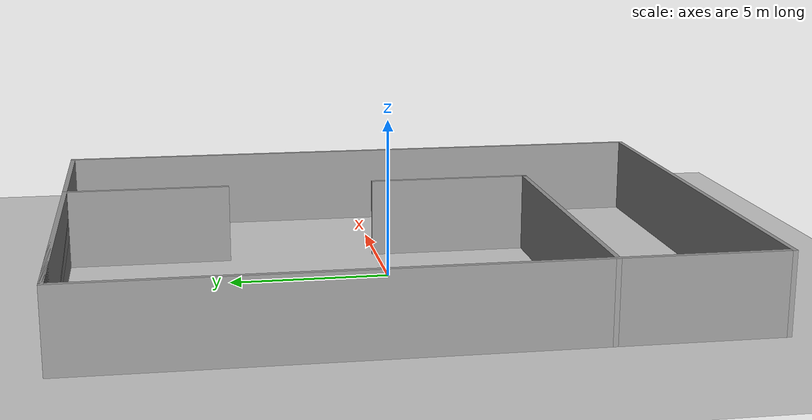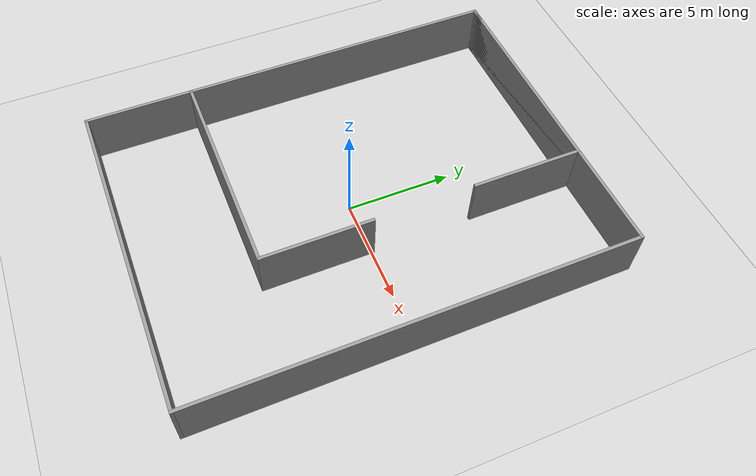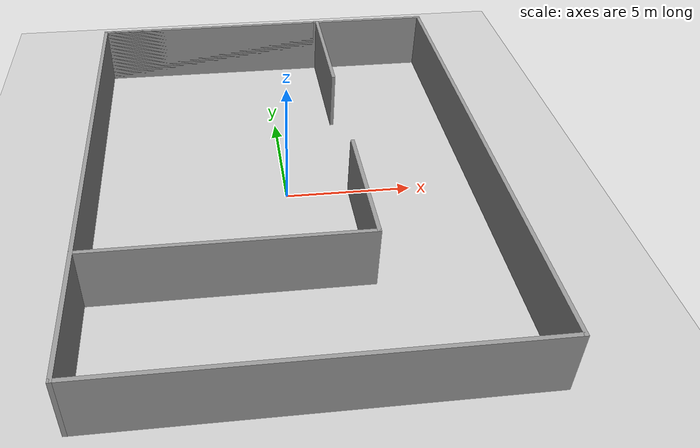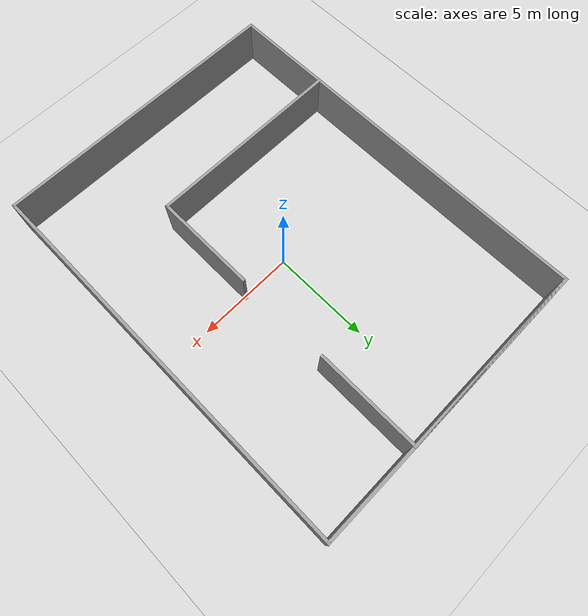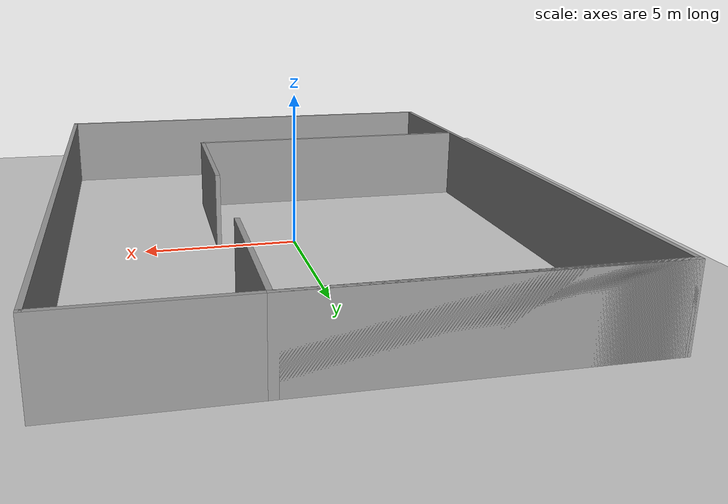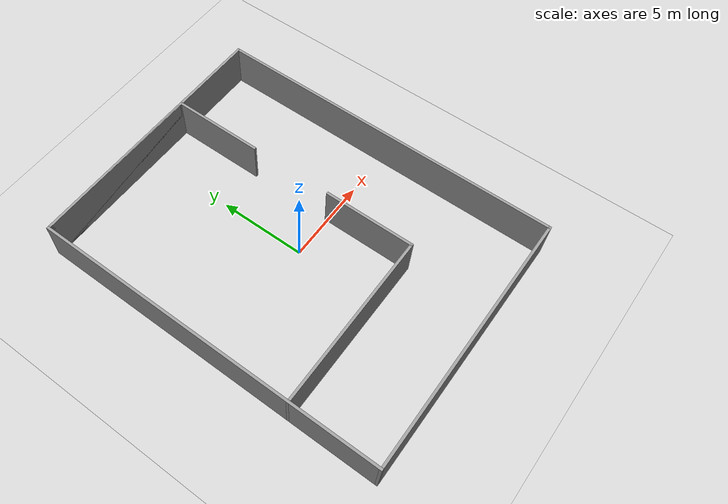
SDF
<sdf version="1.6">
 <world name="default">
  <light name="sun" type="directional">
   <pose>0 0 10 0 -0 0</pose>
   <diffuse>0.8 0.8 0.8 1</diffuse>
   <specular>0.2 0.2 0.2 1</specular>
   <attenuation>
    <range>1000</range>
    <constant>0.9</constant>
    <linear>0.01</linear>
    <quadratic>0.001</quadratic>
   </attenuation>
   <direction>-0.5 0.1 -0.9</direction>
  </light>
  <model name="ground_plane">
   <static>1</static>
   <link name="link">
    <collision name="collision">
     <geometry><plane><normal>0 0 1</normal><size>100 100</size></plane></geometry>
     <surface>
      <contact><collide_bitmask>65535</collide_bitmask></contact>
      <friction><ode><mu>100</mu><mu2>50</mu2></ode></friction>
     </surface>
    </collision>
    <visual name="visual">
     <cast_shadows>0</cast_shadows>
     <geometry><plane><normal>0 0 1</normal><size>100 100</size></plane></geometry>
     <material>
      <script><uri>file://media/materials/scripts/gazebo.material</uri><name>Gazebo/Grey</name></script>
     </material>
    </visual>
   </link>
  </model>
  <gravity>0 0 -9.8</gravity>
  <magnetic_field>6e-06 2.3e-05 -4.2e-05</magnetic_field>
  <atmosphere type="adiabatic"/>
  <physics name="default_physics" default="0" type="ode">
   <max_step_size>0.001</max_step_size>
   <real_time_factor>1</real_time_factor>
   <real_time_update_rate>1000</real_time_update_rate>
  </physics>
  <scene><ambient>0.4 0.4 0.4 1</ambient><background>0.7 0.7 0.7 1</background><shadows>1</shadows></scene>
  <audio><device>default</device></audio>
  <spherical_coordinates>
   <surface_model>EARTH_WGS84</surface_model>
   <latitude_deg>0</latitude_deg>
   <longitude_deg>0</longitude_deg>
   <elevation>0</elevation>
   <heading_deg>0</heading_deg>
  </spherical_coordinates>
  <model name="bigroom">
   <pose>0.012016 0.009737 0 0 -0 0</pose>
   <link name="Wall_44">
    <collision name="Wall_44_Collision">
     <geometry><box><size>15.25 0.15 2.5</size></box></geometry>
     <pose>0 0 1.25 0 -0 0</pose>
    </collision>
    <visual name="Wall_44_Visual">
     <pose>0 0 1.25 0 -0 0</pose>
     <geometry><box><size>15.25 0.15 2.5</size></box></geometry>
     <material>
      <script><uri>file://media/materials/scripts/gazebo.material</uri><name>Gazebo/Grey</name></script>
      <ambient>1 1 1 1</ambient>
     </material>
     <meta><layer>0</layer></meta>
    </visual>
    <pose>-0 10.05 0 0 -0 0</pose>
   </link>
   <link name="Wall_46">
    <collision name="Wall_46_Collision">
     <geometry><box><size>20.25 0.15 2.5</size></box></geometry>
     <pose>0 0 1.25 0 -0 0</pose>
    </collision>
    <visual name="Wall_46_Visual">
     <pose>0 0 1.25 0 -0 0</pose>
     <geometry><box><size>20.25 0.15 2.5</size></box></geometry>
     <material>
      <script><uri>file://media/materials/scripts/gazebo.material</uri><name>Gazebo/Grey</name></script>
      <ambient>1 1 1 1</ambient>
     </material>
     <meta><layer>0</layer></meta>
    </visual>
    <pose>7.55 0 0 0 -0 -1.5708</pose>
   </link>
   <link name="Wall_47">
    <collision name="Wall_47_Collision">
     <geometry><box><size>15.25 0.15 2.5</size></box></geometry>
     <pose>0 0 1.25 0 -0 0</pose>
    </collision>
    <visual name="Wall_47_Visual">
     <pose>0 0 1.25 0 -0 0</pose>
     <geometry><box><size>15.25 0.15 2.5</size></box></geometry>
     <material>
      <script><uri>file://media/materials/scripts/gazebo.material</uri><name>Gazebo/Grey</name></script>
      <ambient>1 1 1 1</ambient>
     </material>
     <meta><layer>0</layer></meta>
    </visual>
    <pose>-0 -10.05 0 0 -0 3.14159</pose>
   </link>
   <link name="Wall_48">
    <collision name="Wall_48_Collision">
     <geometry><box><size>20.25 0.15 2.5</size></box></geometry>
     <pose>0 0 1.25 0 -0 0</pose>
    </collision>
    <visual name="Wall_48_Visual">
     <pose>0 0 1.25 0 -0 0</pose>
     <geometry><box><size>20.25 0.15 2.5</size></box></geometry>
     <material>
      <script><uri>file://media/materials/scripts/gazebo.material</uri><name>Gazebo/Grey</name></script>
      <ambient>1 1 1 1</ambient>
     </material>
     <meta><layer>0</layer></meta>
    </visual>
    <pose>-7.55 0 0 0 -0 1.5708</pose>
   </link>
   <link name="Wall_49">
    <collision name="Wall_49_Collision">
     <geometry><box><size>10 0.15 2.5</size></box></geometry>
     <pose>0 0 1.25 0 -0 0</pose>
    </collision>
    <visual name="Wall_49_Visual">
     <pose>0 0 1.25 0 -0 0</pose>
     <geometry><box><size>10 0.15 2.5</size></box></geometry>
     <material>
      <script><uri>file://media/materials/scripts/gazebo.material</uri><name>Gazebo/Grey</name></script>
      <ambient>1 1 1 1</ambient>
     </material>
     <meta><layer>0</layer></meta>
    </visual>
    <pose>-2.625 10.05 0 0 -0 0</pose>
   </link>
   <link name="Wall_51">
    <collision name="Wall_51_Collision">
     <geometry><box><size>10.25 0.15 2.5</size></box></geometry>
     <pose>0 0 1.25 0 -0 0</pose>
    </collision>
    <visual name="Wall_51_Visual">
     <pose>0 0 1.25 0 -0 0</pose>
     <geometry><box><size>10.25 0.15 2.5</size></box></geometry>
     <material>
      <script><uri>file://media/materials/scripts/gazebo.material</uri><name>Gazebo/Grey</name></script>
      <ambient>1 1 1 1</ambient>
     </material>
     <meta><layer>0</layer></meta>
    </visual>
    <pose>-2.5 10.05 0 0 -0 0</pose>
   </link>
   <link name="Wall_53">
    <collision name="Wall_53_Collision">
     <geometry><box><size>10.25 0.15 2.5</size></box></geometry>
     <pose>0 0 1.25 0 -0 0</pose>
    </collision>
    <visual name="Wall_53_Visual">
     <pose>0 0 1.25 0 -0 0</pose>
     <geometry><box><size>10.25 0.15 2.5</size></box></geometry>
     <material>
      <script><uri>file://media/materials/scripts/gazebo.material</uri><name>Gazebo/Grey</name></script>
      <ambient>1 1 1 1</ambient>
     </material>
     <meta><layer>0</layer></meta>
    </visual>
    <pose>-2.5 -5.05 0 0 -0 3.14159</pose>
   </link>
   <link name="Wall_55">
    <collision name="Wall_55_Collision">
     <geometry><box><size>5.25 0.15 2.5</size></box></geometry>
     <pose>0 0 1.25 0 -0 0</pose>
    </collision>
    <visual name="Wall_55_Visual">
     <pose>0 0 1.25 0 -0 0</pose>
     <geometry><box><size>5.25 0.15 2.5</size></box></geometry>
     <material>
      <script><uri>file://media/materials/scripts/gazebo.material</uri><name>Gazebo/Grey</name></script>
      <ambient>1 1 1 1</ambient>
     </material>
     <meta><layer>0</layer></meta>
    </visual>
    <pose>2.55 -2.5 0 0 -0 1.5708</pose>
   </link>
   <link name="Wall_57">
    <collision name="Wall_57_Collision">
     <geometry><box><size>5.3 0.15 2.5</size></box></geometry>
     <pose>0 0 1.25 0 -0 0</pose>
    </collision>
    <visual name="Wall_57_Visual">
     <pose>0 0 1.25 0 -0 0</pose>
     <geometry><box><size>5.3 0.15 2.5</size></box></geometry>
     <material>
      <script><uri>file://media/materials/scripts/gazebo.material</uri><name>Gazebo/Grey</name></script>
      <ambient>1 1 1 1</ambient>
     </material>
     <meta><layer>0</layer></meta>
    </visual>
    <pose>2.55 7.475 0 0 -0 1.5708</pose>
   </link>
   <static>1</static>
  </model>
 </world>
</sdf>
